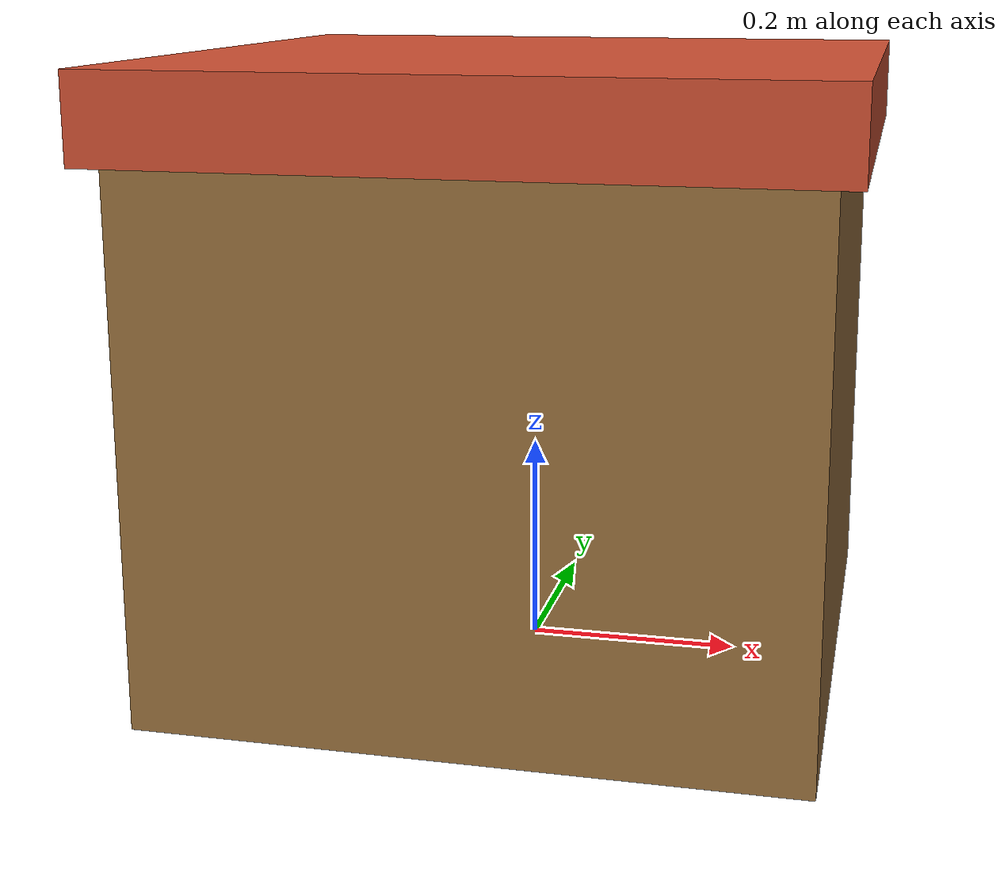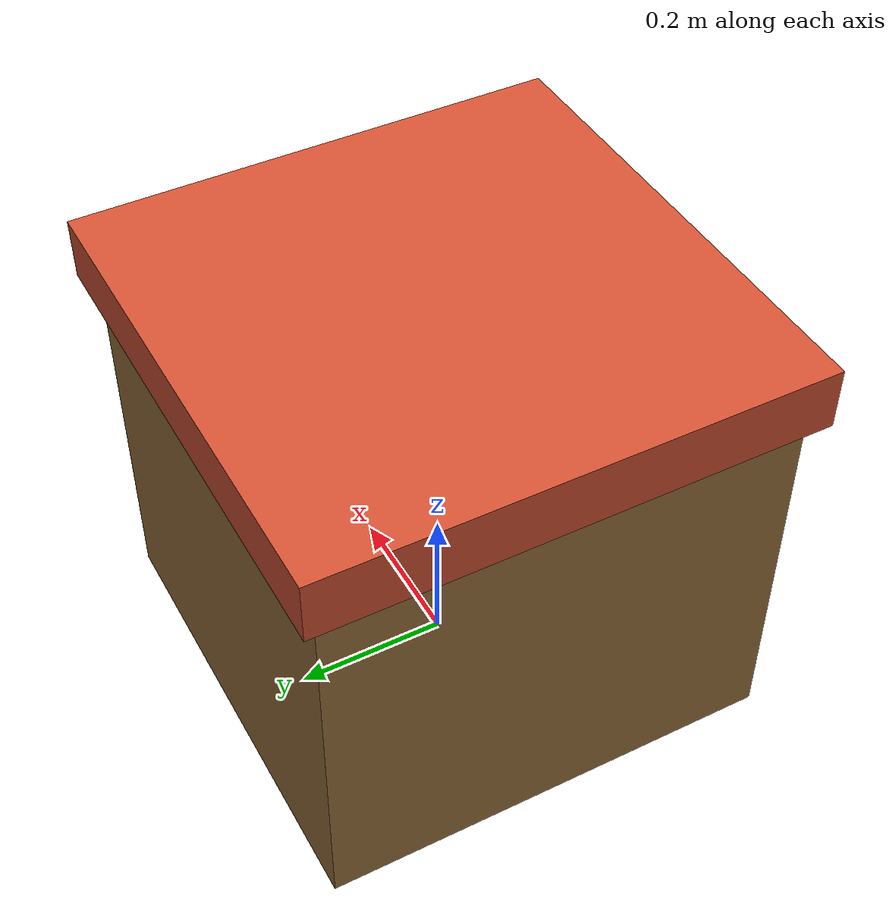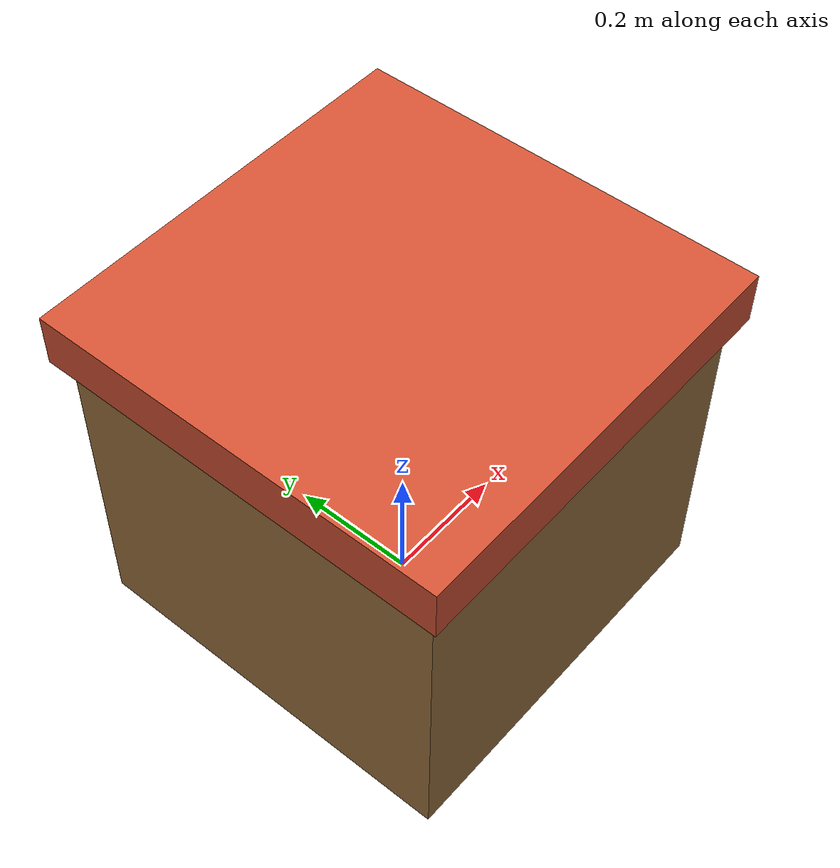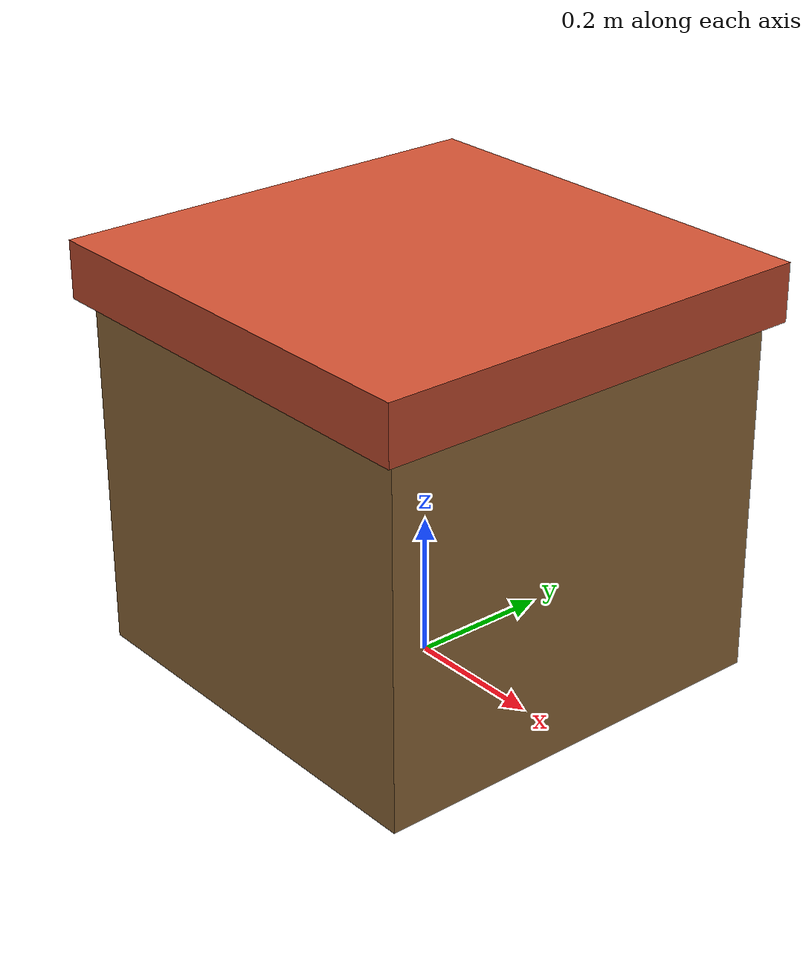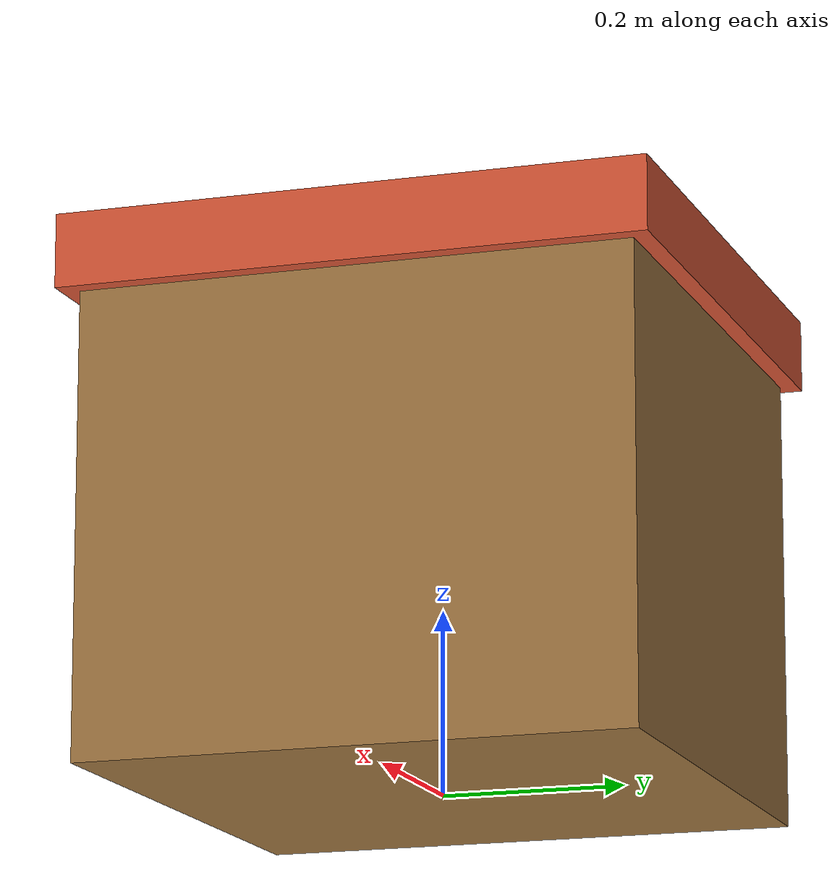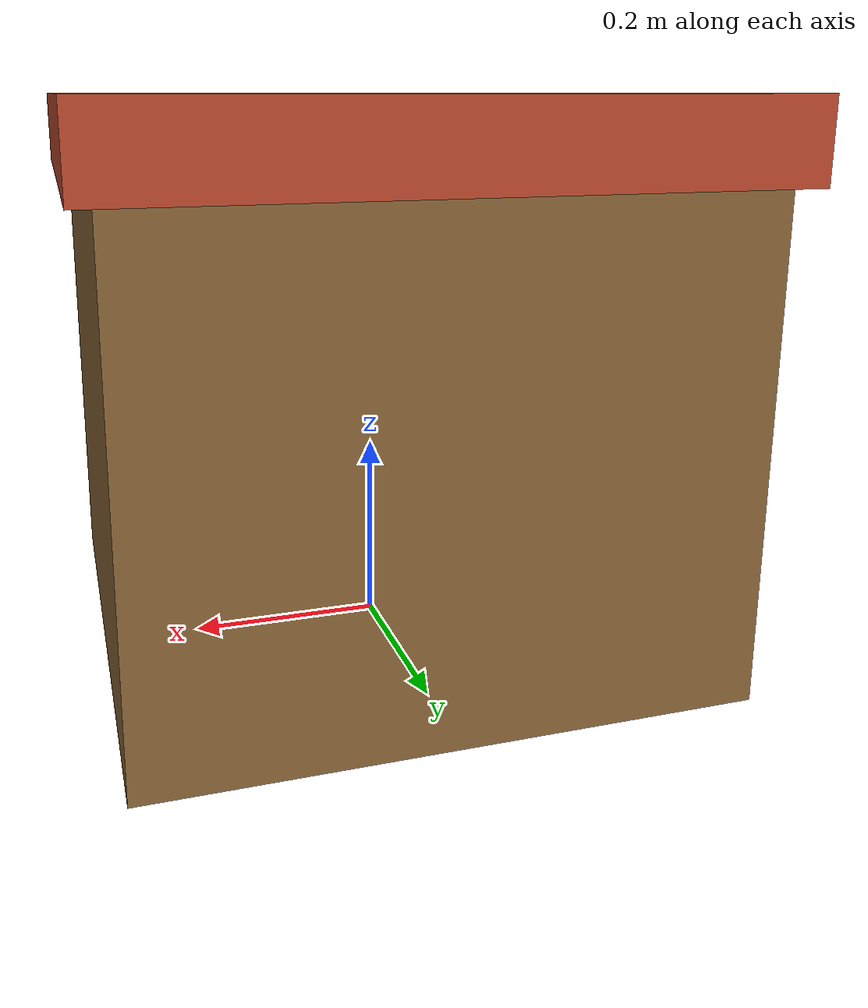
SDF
<?xml version="1.0" ?>
<sdf version="1.6">
<model name="crate">
  <static>true</static>
  <link name="link">
    <collision name="footprint">
      <pose>0 0 0.25 0 0 0</pose>
      <geometry><box><size>0.6 0.6 0.5</size></box></geometry>
    </collision>
<visual name="body">
<pose>0 0 0.25 0 0 0</pose>
<geometry><box><size>0.6 0.6 0.5</size></box></geometry>
<material><ambient>0.33 0.24 0.13 1</ambient>
<diffuse>0.6 0.44 0.24 1</diffuse>
<specular>0.15 0.1 0.05 1</specular></material>
</visual>
<visual name="lid">
<pose>0 0 0.54 0 0 0</pose>
<geometry><box><size>0.64 0.64 0.08</size></box></geometry>
<material><ambient>0.68 0.25 0.16 1</ambient>
<diffuse>0.82 0.32 0.2 1</diffuse>
<specular>0.3 0.2 0.1 1</specular></material>
</visual>
  </link>
</model>
</sdf>
